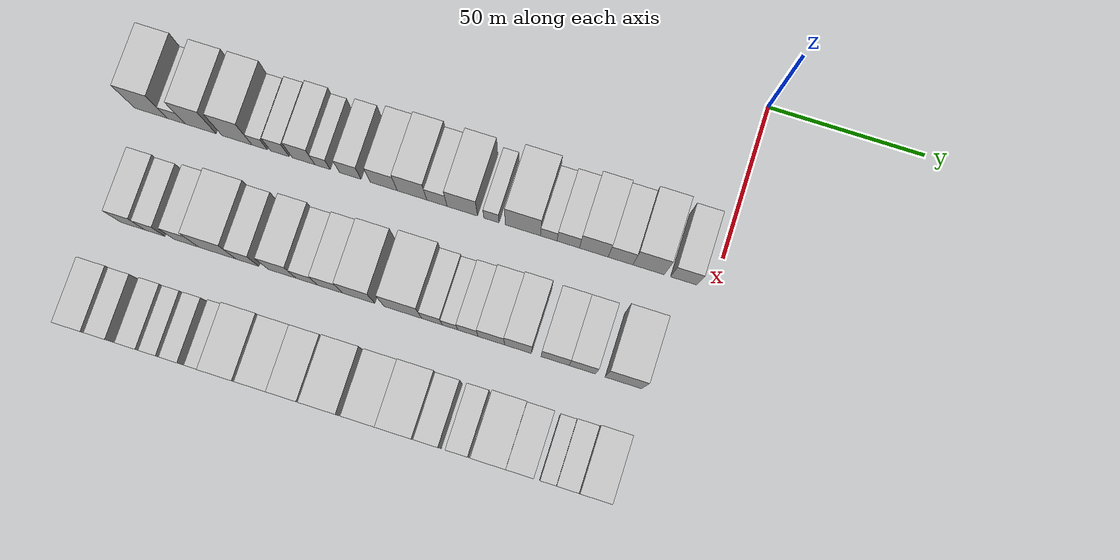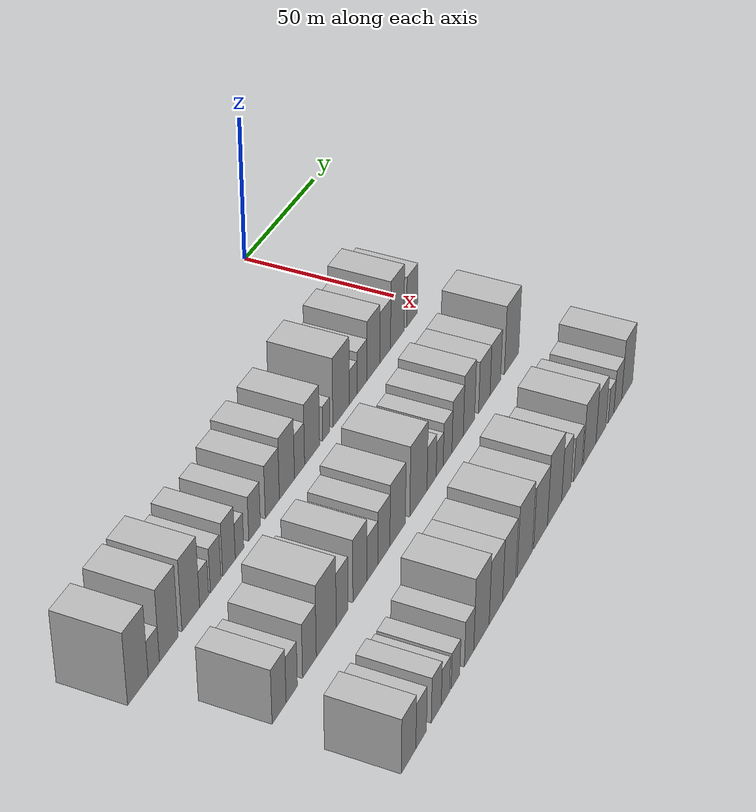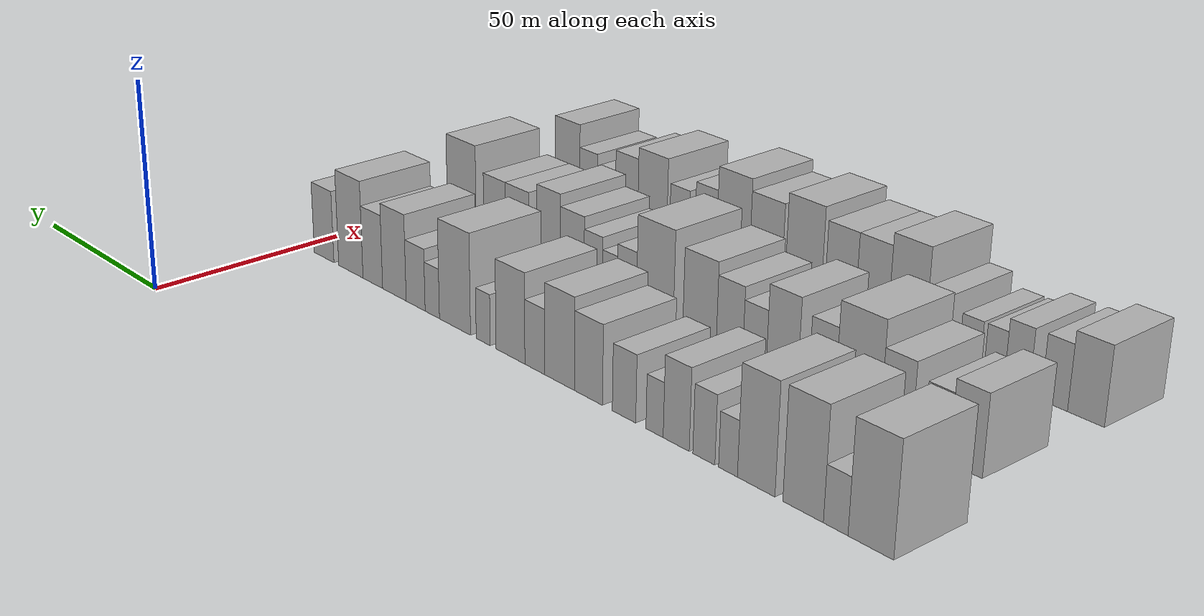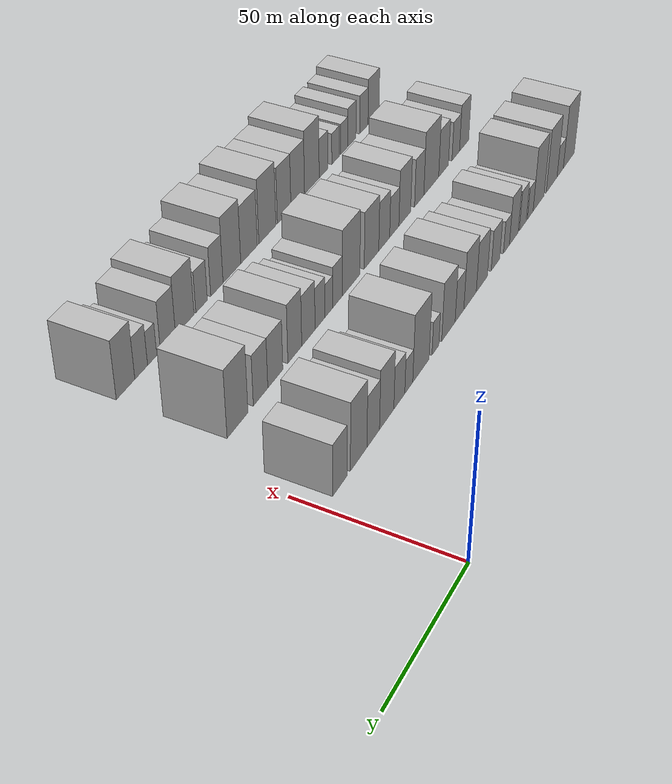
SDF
<sdf version="1.6">
 <world name="default">
  <model name="building_18">
   <static>1</static>
   <pose>50.0000 -181.0141 0 0.000000 0.000000 0.000000</pose>
   <link name="link">
    <pose>0 0 12.00 0 0 0</pose>
    <collision name="collision"><geometry><box><size>20.0000 10.6797 24.0000</size></box></geometry></collision>
    <visual name="visual">
     <cast_shadows>0</cast_shadows>
     <geometry><box><size>20.0000 10.6797 24.0000</size></box></geometry>
     <material>
      <script>
       <uri>model://HANNAS_wall/materials/scripts</uri>
       <uri>model://HANNAS_wall/materials/textures</uri>
       <name>vrc/HANNAS_wall</name>
      </script>
     </material>
    </visual>
   </link>
  </model>
  <model name="building_19">
   <static>1</static>
   <pose>50.0000 -172.7098 0 0.000000 0.000000 0.000000</pose>
   <link name="link">
    <pose>0 0 6.00 0 0 0</pose>
    <collision name="collision"><geometry><box><size>20.0000 5.9289 12.0000</size></box></geometry></collision>
    <visual name="visual">
     <cast_shadows>0</cast_shadows>
     <geometry><box><size>20.0000 5.9289 12.0000</size></box></geometry>
     <material>
      <script>
       <uri>model://HANNAS_wall/materials/scripts</uri>
       <uri>model://HANNAS_wall/materials/textures</uri>
       <name>vrc/HANNAS_wall</name>
      </script>
     </material>
    </visual>
   </link>
  </model>
  <model name="building_20">
   <static>1</static>
   <pose>50.0000 -164.6984 0 0.000000 0.000000 0.000000</pose>
   <link name="link">
    <pose>0 0 12.00 0 0 0</pose>
    <collision name="collision"><geometry><box><size>20.0000 10.0939 24.0000</size></box></geometry></collision>
    <visual name="visual">
     <cast_shadows>0</cast_shadows>
     <geometry><box><size>20.0000 10.0939 24.0000</size></box></geometry>
     <material>
      <script>
       <uri>model://HANNAS_wall/materials/scripts</uri>
       <uri>model://HANNAS_wall/materials/textures</uri>
       <name>vrc/HANNAS_wall</name>
      </script>
     </material>
    </visual>
   </link>
  </model>
  <model name="building_21">
   <static>1</static>
   <pose>50.0000 -152.7551 0 0.000000 0.000000 0.000000</pose>
   <link name="link">
    <pose>0 0 12.00 0 0 0</pose>
    <collision name="collision"><geometry><box><size>20.0000 9.7928 24.0000</size></box></geometry></collision>
    <visual name="visual">
     <cast_shadows>0</cast_shadows>
     <geometry><box><size>20.0000 9.7928 24.0000</size></box></geometry>
     <material>
      <script>
       <uri>model://HANNAS_wall/materials/scripts</uri>
       <uri>model://HANNAS_wall/materials/textures</uri>
       <name>vrc/HANNAS_wall</name>
      </script>
     </material>
    </visual>
   </link>
  </model>
  <model name="building_22">
   <static>1</static>
   <pose>50.0000 -145.3392 0 0.000000 0.000000 0.000000</pose>
   <link name="link">
    <pose>0 0 6.00 0 0 0</pose>
    <collision name="collision"><geometry><box><size>20.0000 5.0390 12.0000</size></box></geometry></collision>
    <visual name="visual">
     <cast_shadows>0</cast_shadows>
     <geometry><box><size>20.0000 5.0390 12.0000</size></box></geometry>
     <material>
      <script>
       <uri>model://HANNAS_wall/materials/scripts</uri>
       <uri>model://HANNAS_wall/materials/textures</uri>
       <name>vrc/HANNAS_wall</name>
      </script>
     </material>
    </visual>
   </link>
  </model>
  <model name="building_23">
   <static>1</static>
   <pose>50.0000 -138.7848 0 0.000000 0.000000 0.000000</pose>
   <link name="link">
    <pose>0 0 7.50 0 0 0</pose>
    <collision name="collision"><geometry><box><size>20.0000 6.0698 15.0000</size></box></geometry></collision>
    <visual name="visual">
     <cast_shadows>0</cast_shadows>
     <geometry><box><size>20.0000 6.0698 15.0000</size></box></geometry>
     <material>
      <script>
       <uri>model://HANNAS_wall/materials/scripts</uri>
       <uri>model://HANNAS_wall/materials/textures</uri>
       <name>vrc/HANNAS_wall</name>
      </script>
     </material>
    </visual>
   </link>
  </model>
  <model name="building_24">
   <static>1</static>
   <pose>50.0000 -131.0683 0 0.000000 0.000000 0.000000</pose>
   <link name="link">
    <pose>0 0 9.00 0 0 0</pose>
    <collision name="collision"><geometry><box><size>20.0000 7.3630 18.0000</size></box></geometry></collision>
    <visual name="visual">
     <cast_shadows>0</cast_shadows>
     <geometry><box><size>20.0000 7.3630 18.0000</size></box></geometry>
     <material>
      <script>
       <uri>model://HANNAS_wall/materials/scripts</uri>
       <uri>model://HANNAS_wall/materials/textures</uri>
       <name>vrc/HANNAS_wall</name>
      </script>
     </material>
    </visual>
   </link>
  </model>
  <model name="building_25">
   <static>1</static>
   <pose>50.0000 -124.8962 0 0.000000 0.000000 0.000000</pose>
   <link name="link">
    <pose>0 0 6.00 0 0 0</pose>
    <collision name="collision"><geometry><box><size>20.0000 4.9811 12.0000</size></box></geometry></collision>
    <visual name="visual">
     <cast_shadows>0</cast_shadows>
     <geometry><box><size>20.0000 4.9811 12.0000</size></box></geometry>
     <material>
      <script>
       <uri>model://HANNAS_wall/materials/scripts</uri>
       <uri>model://HANNAS_wall/materials/textures</uri>
       <name>vrc/HANNAS_wall</name>
      </script>
     </material>
    </visual>
   </link>
  </model>
  <model name="building_26">
   <static>1</static>
   <pose>50.0000 -115.9093 0 0.000000 0.000000 0.000000</pose>
   <link name="link">
    <pose>0 0 7.50 0 0 0</pose>
    <collision name="collision"><geometry><box><size>20.0000 6.9926 15.0000</size></box></geometry></collision>
    <visual name="visual">
     <cast_shadows>0</cast_shadows>
     <geometry><box><size>20.0000 6.9926 15.0000</size></box></geometry>
     <material>
      <script>
       <uri>model://HANNAS_wall/materials/scripts</uri>
       <uri>model://HANNAS_wall/materials/textures</uri>
       <name>vrc/HANNAS_wall</name>
      </script>
     </material>
    </visual>
   </link>
  </model>
  <model name="building_27">
   <static>1</static>
   <pose>50.0000 -105.0629 0 0.000000 0.000000 0.000000</pose>
   <link name="link">
    <pose>0 0 9.00 0 0 0</pose>
    <collision name="collision"><geometry><box><size>20.0000 8.7003 18.0000</size></box></geometry></collision>
    <visual name="visual">
     <cast_shadows>0</cast_shadows>
     <geometry><box><size>20.0000 8.7003 18.0000</size></box></geometry>
     <material>
      <script>
       <uri>model://HANNAS_wall/materials/scripts</uri>
       <uri>model://HANNAS_wall/materials/textures</uri>
       <name>vrc/HANNAS_wall</name>
      </script>
     </material>
    </visual>
   </link>
  </model>
  <model name="building_28">
   <static>1</static>
   <pose>50.0000 -95.9470 0 0.000000 0.000000 0.000000</pose>
   <link name="link">
    <pose>0 0 10.50 0 0 0</pose>
    <collision name="collision"><geometry><box><size>20.0000 9.5315 21.0000</size></box></geometry></collision>
    <visual name="visual">
     <cast_shadows>0</cast_shadows>
     <geometry><box><size>20.0000 9.5315 21.0000</size></box></geometry>
     <material>
      <script>
       <uri>model://HANNAS_wall/materials/scripts</uri>
       <uri>model://HANNAS_wall/materials/textures</uri>
       <name>vrc/HANNAS_wall</name>
      </script>
     </material>
    </visual>
   </link>
  </model>
  <model name="building_29">
   <static>1</static>
   <pose>50.0000 -87.9346 0 0.000000 0.000000 0.000000</pose>
   <link name="link">
    <pose>0 0 7.50 0 0 0</pose>
    <collision name="collision"><geometry><box><size>20.0000 6.4934 15.0000</size></box></geometry></collision>
    <visual name="visual">
     <cast_shadows>0</cast_shadows>
     <geometry><box><size>20.0000 6.4934 15.0000</size></box></geometry>
     <material>
      <script>
       <uri>model://HANNAS_wall/materials/scripts</uri>
       <uri>model://HANNAS_wall/materials/textures</uri>
       <name>vrc/HANNAS_wall</name>
      </script>
     </material>
    </visual>
   </link>
  </model>
  <model name="building_30">
   <static>1</static>
   <pose>50.0000 -79.7964 0 0.000000 0.000000 0.000000</pose>
   <link name="link">
    <pose>0 0 10.50 0 0 0</pose>
    <collision name="collision"><geometry><box><size>20.0000 9.7829 21.0000</size></box></geometry></collision>
    <visual name="visual">
     <cast_shadows>0</cast_shadows>
     <geometry><box><size>20.0000 9.7829 21.0000</size></box></geometry>
     <material>
      <script>
       <uri>model://HANNAS_wall/materials/scripts</uri>
       <uri>model://HANNAS_wall/materials/textures</uri>
       <name>vrc/HANNAS_wall</name>
      </script>
     </material>
    </visual>
   </link>
  </model>
  <model name="building_31">
   <static>1</static>
   <pose>50.0000 -70.4690 0 0.000000 0.000000 0.000000</pose>
   <link name="link">
    <pose>0 0 6.00 0 0 0</pose>
    <collision name="collision"><geometry><box><size>20.0000 4.8719 12.0000</size></box></geometry></collision>
    <visual name="visual">
     <cast_shadows>0</cast_shadows>
     <geometry><box><size>20.0000 4.8719 12.0000</size></box></geometry>
     <material>
      <script>
       <uri>model://HANNAS_wall/materials/scripts</uri>
       <uri>model://HANNAS_wall/materials/textures</uri>
       <name>vrc/HANNAS_wall</name>
      </script>
     </material>
    </visual>
   </link>
  </model>
  <model name="building_32">
   <static>1</static>
   <pose>50.0000 -60.4314 0 0.000000 0.000000 0.000000</pose>
   <link name="link">
    <pose>0 0 12.00 0 0 0</pose>
    <collision name="collision"><geometry><box><size>20.0000 11.2034 24.0000</size></box></geometry></collision>
    <visual name="visual">
     <cast_shadows>0</cast_shadows>
     <geometry><box><size>20.0000 11.2034 24.0000</size></box></geometry>
     <material>
      <script>
       <uri>model://HANNAS_wall/materials/scripts</uri>
       <uri>model://HANNAS_wall/materials/textures</uri>
       <name>vrc/HANNAS_wall</name>
      </script>
     </material>
    </visual>
   </link>
  </model>
  <model name="building_33">
   <static>1</static>
   <pose>50.0000 -52.1777 0 0.000000 0.000000 0.000000</pose>
   <link name="link">
    <pose>0 0 6.00 0 0 0</pose>
    <collision name="collision"><geometry><box><size>20.0000 5.3040 12.0000</size></box></geometry></collision>
    <visual name="visual">
     <cast_shadows>0</cast_shadows>
     <geometry><box><size>20.0000 5.3040 12.0000</size></box></geometry>
     <material>
      <script>
       <uri>model://HANNAS_wall/materials/scripts</uri>
       <uri>model://HANNAS_wall/materials/textures</uri>
       <name>vrc/HANNAS_wall</name>
      </script>
     </material>
    </visual>
   </link>
  </model>
  <model name="building_34">
   <static>1</static>
   <pose>50.0000 -45.9493 0 0.000000 0.000000 0.000000</pose>
   <link name="link">
    <pose>0 0 7.50 0 0 0</pose>
    <collision name="collision"><geometry><box><size>20.0000 7.1527 15.0000</size></box></geometry></collision>
    <visual name="visual">
     <cast_shadows>0</cast_shadows>
     <geometry><box><size>20.0000 7.1527 15.0000</size></box></geometry>
     <material>
      <script>
       <uri>model://HANNAS_wall/materials/scripts</uri>
       <uri>model://HANNAS_wall/materials/textures</uri>
       <name>vrc/HANNAS_wall</name>
      </script>
     </material>
    </visual>
   </link>
  </model>
  <model name="building_35">
   <static>1</static>
   <pose>50.0000 -37.8079 0 0.000000 0.000000 0.000000</pose>
   <link name="link">
    <pose>0 0 10.50 0 0 0</pose>
    <collision name="collision"><geometry><box><size>20.0000 9.1302 21.0000</size></box></geometry></collision>
    <visual name="visual">
     <cast_shadows>0</cast_shadows>
     <geometry><box><size>20.0000 9.1302 21.0000</size></box></geometry>
     <material>
      <script>
       <uri>model://HANNAS_wall/materials/scripts</uri>
       <uri>model://HANNAS_wall/materials/textures</uri>
       <name>vrc/HANNAS_wall</name>
      </script>
     </material>
    </visual>
   </link>
  </model>
  <model name="building_36">
   <static>1</static>
   <pose>50.0000 -29.3326 0 0.000000 0.000000 0.000000</pose>
   <link name="link">
    <pose>0 0 9.00 0 0 0</pose>
    <collision name="collision"><geometry><box><size>20.0000 7.8204 18.0000</size></box></geometry></collision>
    <visual name="visual">
     <cast_shadows>0</cast_shadows>
     <geometry><box><size>20.0000 7.8204 18.0000</size></box></geometry>
     <material>
      <script>
       <uri>model://HANNAS_wall/materials/scripts</uri>
       <uri>model://HANNAS_wall/materials/textures</uri>
       <name>vrc/HANNAS_wall</name>
      </script>
     </material>
    </visual>
   </link>
  </model>
  <model name="building_37">
   <static>1</static>
   <pose>50.0000 -20.4561 0 0.000000 0.000000 0.000000</pose>
   <link name="link">
    <pose>0 0 12.00 0 0 0</pose>
    <collision name="collision"><geometry><box><size>20.0000 9.9324 24.0000</size></box></geometry></collision>
    <visual name="visual">
     <cast_shadows>0</cast_shadows>
     <geometry><box><size>20.0000 9.9324 24.0000</size></box></geometry>
     <material>
      <script>
       <uri>model://HANNAS_wall/materials/scripts</uri>
       <uri>model://HANNAS_wall/materials/textures</uri>
       <name>vrc/HANNAS_wall</name>
      </script>
     </material>
    </visual>
   </link>
  </model>
  <model name="building_38">
   <static>1</static>
   <pose>50.0000 -9.3580 0 0.000000 0.000000 0.000000</pose>
   <link name="link">
    <pose>0 0 9.00 0 0 0</pose>
    <collision name="collision"><geometry><box><size>20.0000 8.2639 18.0000</size></box></geometry></collision>
    <visual name="visual">
     <cast_shadows>0</cast_shadows>
     <geometry><box><size>20.0000 8.2639 18.0000</size></box></geometry>
     <material>
      <script>
       <uri>model://HANNAS_wall/materials/scripts</uri>
       <uri>model://HANNAS_wall/materials/textures</uri>
       <name>vrc/HANNAS_wall</name>
      </script>
     </material>
    </visual>
   </link>
  </model>
  <model name="building_101">
   <static>1</static>
   <pose>85.0000 -173.8654 0 0.000000 0.000000 0.000000</pose>
   <link name="link">
    <pose>0 0 9.00 0 0 0</pose>
    <collision name="collision"><geometry><box><size>20.0000 7.9223 18.0000</size></box></geometry></collision>
    <visual name="visual">
     <cast_shadows>0</cast_shadows>
     <geometry><box><size>20.0000 7.9223 18.0000</size></box></geometry>
     <material>
      <script>
       <uri>model://HANNAS_wall/materials/scripts</uri>
       <uri>model://HANNAS_wall/materials/textures</uri>
       <name>vrc/HANNAS_wall</name>
      </script>
     </material>
    </visual>
   </link>
  </model>
  <model name="building_102">
   <static>1</static>
   <pose>85.0000 -166.7015 0 0.000000 0.000000 0.000000</pose>
   <link name="link">
    <pose>0 0 7.50 0 0 0</pose>
    <collision name="collision"><geometry><box><size>20.0000 6.4054 15.0000</size></box></geometry></collision>
    <visual name="visual">
     <cast_shadows>0</cast_shadows>
     <geometry><box><size>20.0000 6.4054 15.0000</size></box></geometry>
     <material>
      <script>
       <uri>model://HANNAS_wall/materials/scripts</uri>
       <uri>model://HANNAS_wall/materials/textures</uri>
       <name>vrc/HANNAS_wall</name>
      </script>
     </material>
    </visual>
   </link>
  </model>
  <model name="building_103">
   <static>1</static>
   <pose>85.0000 -156.4693 0 0.000000 0.000000 0.000000</pose>
   <link name="link">
    <pose>0 0 9.00 0 0 0</pose>
    <collision name="collision"><geometry><box><size>20.0000 8.0591 18.0000</size></box></geometry></collision>
    <visual name="visual">
     <cast_shadows>0</cast_shadows>
     <geometry><box><size>20.0000 8.0591 18.0000</size></box></geometry>
     <material>
      <script>
       <uri>model://HANNAS_wall/materials/scripts</uri>
       <uri>model://HANNAS_wall/materials/textures</uri>
       <name>vrc/HANNAS_wall</name>
      </script>
     </material>
    </visual>
   </link>
  </model>
  <model name="building_104">
   <static>1</static>
   <pose>85.0000 -146.4472 0 0.000000 0.000000 0.000000</pose>
   <link name="link">
    <pose>0 0 12.00 0 0 0</pose>
    <collision name="collision"><geometry><box><size>20.0000 11.9851 24.0000</size></box></geometry></collision>
    <visual name="visual">
     <cast_shadows>0</cast_shadows>
     <geometry><box><size>20.0000 11.9851 24.0000</size></box></geometry>
     <material>
      <script>
       <uri>model://HANNAS_wall/materials/scripts</uri>
       <uri>model://HANNAS_wall/materials/textures</uri>
       <name>vrc/HANNAS_wall</name>
      </script>
     </material>
    </visual>
   </link>
  </model>
  <model name="building_105">
   <static>1</static>
   <pose>85.0000 -136.8165 0 0.000000 0.000000 0.000000</pose>
   <link name="link">
    <pose>0 0 9.00 0 0 0</pose>
    <collision name="collision"><geometry><box><size>20.0000 7.2762 18.0000</size></box></geometry></collision>
    <visual name="visual">
     <cast_shadows>0</cast_shadows>
     <geometry><box><size>20.0000 7.2762 18.0000</size></box></geometry>
     <material>
      <script>
       <uri>model://HANNAS_wall/materials/scripts</uri>
       <uri>model://HANNAS_wall/materials/textures</uri>
       <name>vrc/HANNAS_wall</name>
      </script>
     </material>
    </visual>
   </link>
  </model>
  <model name="building_106">
   <static>1</static>
   <pose>85.0000 -125.6954 0 0.000000 0.000000 0.000000</pose>
   <link name="link">
    <pose>0 0 10.50 0 0 0</pose>
    <collision name="collision"><geometry><box><size>20.0000 8.9661 21.0000</size></box></geometry></collision>
    <visual name="visual">
     <cast_shadows>0</cast_shadows>
     <geometry><box><size>20.0000 8.9661 21.0000</size></box></geometry>
     <material>
      <script>
       <uri>model://HANNAS_wall/materials/scripts</uri>
       <uri>model://HANNAS_wall/materials/textures</uri>
       <name>vrc/HANNAS_wall</name>
      </script>
     </material>
    </visual>
   </link>
  </model>
  <model name="building_107">
   <static>1</static>
   <pose>85.0000 -117.7776 0 0.000000 0.000000 0.000000</pose>
   <link name="link">
    <pose>0 0 7.50 0 0 0</pose>
    <collision name="collision"><geometry><box><size>20.0000 6.8693 15.0000</size></box></geometry></collision>
    <visual name="visual">
     <cast_shadows>0</cast_shadows>
     <geometry><box><size>20.0000 6.8693 15.0000</size></box></geometry>
     <material>
      <script>
       <uri>model://HANNAS_wall/materials/scripts</uri>
       <uri>model://HANNAS_wall/materials/textures</uri>
       <name>vrc/HANNAS_wall</name>
      </script>
     </material>
    </visual>
   </link>
  </model>
  <model name="building_108">
   <static>1</static>
   <pose>85.0000 -110.3764 0 0.000000 0.000000 0.000000</pose>
   <link name="link">
    <pose>0 0 9.00 0 0 0</pose>
    <collision name="collision"><geometry><box><size>20.0000 7.9332 18.0000</size></box></geometry></collision>
    <visual name="visual">
     <cast_shadows>0</cast_shadows>
     <geometry><box><size>20.0000 7.9332 18.0000</size></box></geometry>
     <material>
      <script>
       <uri>model://HANNAS_wall/materials/scripts</uri>
       <uri>model://HANNAS_wall/materials/textures</uri>
       <name>vrc/HANNAS_wall</name>
      </script>
     </material>
    </visual>
   </link>
  </model>
  <model name="building_109">
   <static>1</static>
   <pose>85.0000 -101.2434 0 0.000000 0.000000 0.000000</pose>
   <link name="link">
    <pose>0 0 10.50 0 0 0</pose>
    <collision name="collision"><geometry><box><size>20.0000 10.3330 21.0000</size></box></geometry></collision>
    <visual name="visual">
     <cast_shadows>0</cast_shadows>
     <geometry><box><size>20.0000 10.3330 21.0000</size></box></geometry>
     <material>
      <script>
       <uri>model://HANNAS_wall/materials/scripts</uri>
       <uri>model://HANNAS_wall/materials/textures</uri>
       <name>vrc/HANNAS_wall</name>
      </script>
     </material>
    </visual>
   </link>
  </model>
  <model name="building_110">
   <static>1</static>
   <pose>85.0000 -87.1155 0 0.000000 0.000000 0.000000</pose>
   <link name="link">
    <pose>0 0 12.00 0 0 0</pose>
    <collision name="collision"><geometry><box><size>20.0000 11.9228 24.0000</size></box></geometry></collision>
    <visual name="visual">
     <cast_shadows>0</cast_shadows>
     <geometry><box><size>20.0000 11.9228 24.0000</size></box></geometry>
     <material>
      <script>
       <uri>model://HANNAS_wall/materials/scripts</uri>
       <uri>model://HANNAS_wall/materials/textures</uri>
       <name>vrc/HANNAS_wall</name>
      </script>
     </material>
    </visual>
   </link>
  </model>
  <model name="building_111">
   <static>1</static>
   <pose>85.0000 -77.9106 0 0.000000 0.000000 0.000000</pose>
   <link name="link">
    <pose>0 0 7.50 0 0 0</pose>
    <collision name="collision"><geometry><box><size>20.0000 6.4871 15.0000</size></box></geometry></collision>
    <visual name="visual">
     <cast_shadows>0</cast_shadows>
     <geometry><box><size>20.0000 6.4871 15.0000</size></box></geometry>
     <material>
      <script>
       <uri>model://HANNAS_wall/materials/scripts</uri>
       <uri>model://HANNAS_wall/materials/textures</uri>
       <name>vrc/HANNAS_wall</name>
      </script>
     </material>
    </visual>
   </link>
  </model>
  <model name="building_112">
   <static>1</static>
   <pose>85.0000 -72.1758 0 0.000000 0.000000 0.000000</pose>
   <link name="link">
    <pose>0 0 6.00 0 0 0</pose>
    <collision name="collision"><geometry><box><size>20.0000 4.9826 12.0000</size></box></geometry></collision>
    <visual name="visual">
     <cast_shadows>0</cast_shadows>
     <geometry><box><size>20.0000 4.9826 12.0000</size></box></geometry>
     <material>
      <script>
       <uri>model://HANNAS_wall/materials/scripts</uri>
       <uri>model://HANNAS_wall/materials/textures</uri>
       <name>vrc/HANNAS_wall</name>
      </script>
     </material>
    </visual>
   </link>
  </model>
  <model name="building_113">
   <static>1</static>
   <pose>85.0000 -66.5207 0 0.000000 0.000000 0.000000</pose>
   <link name="link">
    <pose>0 0 7.50 0 0 0</pose>
    <collision name="collision"><geometry><box><size>20.0000 6.3275 15.0000</size></box></geometry></collision>
    <visual name="visual">
     <cast_shadows>0</cast_shadows>
     <geometry><box><size>20.0000 6.3275 15.0000</size></box></geometry>
     <material>
      <script>
       <uri>model://HANNAS_wall/materials/scripts</uri>
       <uri>model://HANNAS_wall/materials/textures</uri>
       <name>vrc/HANNAS_wall</name>
      </script>
     </material>
    </visual>
   </link>
  </model>
  <model name="building_114">
   <static>1</static>
   <pose>85.0000 -59.1796 0 0.000000 0.000000 0.000000</pose>
   <link name="link">
    <pose>0 0 9.00 0 0 0</pose>
    <collision name="collision"><geometry><box><size>20.0000 8.3548 18.0000</size></box></geometry></collision>
    <visual name="visual">
     <cast_shadows>0</cast_shadows>
     <geometry><box><size>20.0000 8.3548 18.0000</size></box></geometry>
     <material>
      <script>
       <uri>model://HANNAS_wall/materials/scripts</uri>
       <uri>model://HANNAS_wall/materials/textures</uri>
       <name>vrc/HANNAS_wall</name>
      </script>
     </material>
    </visual>
   </link>
  </model>
  <model name="building_115">
   <static>1</static>
   <pose>85.0000 -50.7616 0 0.000000 0.000000 0.000000</pose>
   <link name="link">
    <pose>0 0 10.50 0 0 0</pose>
    <collision name="collision"><geometry><box><size>20.0000 8.4812 21.0000</size></box></geometry></collision>
    <visual name="visual">
     <cast_shadows>0</cast_shadows>
     <geometry><box><size>20.0000 8.4812 21.0000</size></box></geometry>
     <material>
      <script>
       <uri>model://HANNAS_wall/materials/scripts</uri>
       <uri>model://HANNAS_wall/materials/textures</uri>
       <name>vrc/HANNAS_wall</name>
      </script>
     </material>
    </visual>
   </link>
  </model>
  <model name="building_116">
   <static>1</static>
   <pose>85.0000 -39.1136 0 0.000000 0.000000 0.000000</pose>
   <link name="link">
    <pose>0 0 9.00 0 0 0</pose>
    <collision name="collision"><geometry><box><size>20.0000 8.8148 18.0000</size></box></geometry></collision>
    <visual name="visual">
     <cast_shadows>0</cast_shadows>
     <geometry><box><size>20.0000 8.8148 18.0000</size></box></geometry>
     <material>
      <script>
       <uri>model://HANNAS_wall/materials/scripts</uri>
       <uri>model://HANNAS_wall/materials/textures</uri>
       <name>vrc/HANNAS_wall</name>
      </script>
     </material>
    </visual>
   </link>
  </model>
  <model name="building_117">
   <static>1</static>
   <pose>85.0000 -30.5663 0 0.000000 0.000000 0.000000</pose>
   <link name="link">
    <pose>0 0 9.00 0 0 0</pose>
    <collision name="collision"><geometry><box><size>20.0000 8.2798 18.0000</size></box></geometry></collision>
    <visual name="visual">
     <cast_shadows>0</cast_shadows>
     <geometry><box><size>20.0000 8.2798 18.0000</size></box></geometry>
     <material>
      <script>
       <uri>model://HANNAS_wall/materials/scripts</uri>
       <uri>model://HANNAS_wall/materials/textures</uri>
       <name>vrc/HANNAS_wall</name>
      </script>
     </material>
    </visual>
   </link>
  </model>
  <model name="building_118">
   <static>1</static>
   <pose>85.0000 -17.6910 0 0.000000 0.000000 0.000000</pose>
   <link name="link">
    <pose>0 0 12.00 0 0 0</pose>
    <collision name="collision"><geometry><box><size>20.0000 11.4709 24.0000</size></box></geometry></collision>
    <visual name="visual">
     <cast_shadows>0</cast_shadows>
     <geometry><box><size>20.0000 11.4709 24.0000</size></box></geometry>
     <material>
      <script>
       <uri>model://HANNAS_wall/materials/scripts</uri>
       <uri>model://HANNAS_wall/materials/textures</uri>
       <name>vrc/HANNAS_wall</name>
      </script>
     </material>
    </visual>
   </link>
  </model>
  <model name="building_173">
   <static>1</static>
   <pose>120.0000 -175.7726 0 0.000000 0.000000 0.000000</pose>
   <link name="link">
    <pose>0 0 9.00 0 0 0</pose>
    <collision name="collision"><geometry><box><size>20.0000 8.8434 18.0000</size></box></geometry></collision>
    <visual name="visual">
     <cast_shadows>0</cast_shadows>
     <geometry><box><size>20.0000 8.8434 18.0000</size></box></geometry>
     <material>
      <script>
       <uri>model://HANNAS_wall/materials/scripts</uri>
       <uri>model://HANNAS_wall/materials/textures</uri>
       <name>vrc/HANNAS_wall</name>
      </script>
     </material>
    </visual>
   </link>
  </model>
  <model name="building_174">
   <static>1</static>
   <pose>120.0000 -168.1011 0 0.000000 0.000000 0.000000</pose>
   <link name="link">
    <pose>0 0 7.50 0 0 0</pose>
    <collision name="collision"><geometry><box><size>20.0000 6.4994 15.0000</size></box></geometry></collision>
    <visual name="visual">
     <cast_shadows>0</cast_shadows>
     <geometry><box><size>20.0000 6.4994 15.0000</size></box></geometry>
     <material>
      <script>
       <uri>model://HANNAS_wall/materials/scripts</uri>
       <uri>model://HANNAS_wall/materials/textures</uri>
       <name>vrc/HANNAS_wall</name>
      </script>
     </material>
    </visual>
   </link>
  </model>
  <model name="building_175">
   <static>1</static>
   <pose>120.0000 -158.6725 0 0.000000 0.000000 0.000000</pose>
   <link name="link">
    <pose>0 0 7.50 0 0 0</pose>
    <collision name="collision"><geometry><box><size>20.0000 6.3578 15.0000</size></box></geometry></collision>
    <visual name="visual">
     <cast_shadows>0</cast_shadows>
     <geometry><box><size>20.0000 6.3578 15.0000</size></box></geometry>
     <material>
      <script>
       <uri>model://HANNAS_wall/materials/scripts</uri>
       <uri>model://HANNAS_wall/materials/textures</uri>
       <name>vrc/HANNAS_wall</name>
      </script>
     </material>
    </visual>
   </link>
  </model>
  <model name="building_176">
   <static>1</static>
   <pose>120.0000 -152.8319 0 0.000000 0.000000 0.000000</pose>
   <link name="link">
    <pose>0 0 6.00 0 0 0</pose>
    <collision name="collision"><geometry><box><size>20.0000 5.3234 12.0000</size></box></geometry></collision>
    <visual name="visual">
     <cast_shadows>0</cast_shadows>
     <geometry><box><size>20.0000 5.3234 12.0000</size></box></geometry>
     <material>
      <script>
       <uri>model://HANNAS_wall/materials/scripts</uri>
       <uri>model://HANNAS_wall/materials/textures</uri>
       <name>vrc/HANNAS_wall</name>
      </script>
     </material>
    </visual>
   </link>
  </model>
  <model name="building_177">
   <static>1</static>
   <pose>120.0000 -146.3475 0 0.000000 0.000000 0.000000</pose>
   <link name="link">
    <pose>0 0 6.00 0 0 0</pose>
    <collision name="collision"><geometry><box><size>20.0000 5.6453 12.0000</size></box></geometry></collision>
    <visual name="visual">
     <cast_shadows>0</cast_shadows>
     <geometry><box><size>20.0000 5.6453 12.0000</size></box></geometry>
     <material>
      <script>
       <uri>model://HANNAS_wall/materials/scripts</uri>
       <uri>model://HANNAS_wall/materials/textures</uri>
       <name>vrc/HANNAS_wall</name>
      </script>
     </material>
    </visual>
   </link>
  </model>
  <model name="building_178">
   <static>1</static>
   <pose>120.0000 -137.4095 0 0.000000 0.000000 0.000000</pose>
   <link name="link">
    <pose>0 0 7.50 0 0 0</pose>
    <collision name="collision"><geometry><box><size>20.0000 6.2309 15.0000</size></box></geometry></collision>
    <visual name="visual">
     <cast_shadows>0</cast_shadows>
     <geometry><box><size>20.0000 6.2309 15.0000</size></box></geometry>
     <material>
      <script>
       <uri>model://HANNAS_wall/materials/scripts</uri>
       <uri>model://HANNAS_wall/materials/textures</uri>
       <name>vrc/HANNAS_wall</name>
      </script>
     </material>
    </visual>
   </link>
  </model>
  <model name="building_179">
   <static>1</static>
   <pose>120.0000 -129.0737 0 0.000000 0.000000 0.000000</pose>
   <link name="link">
    <pose>0 0 12.00 0 0 0</pose>
    <collision name="collision"><geometry><box><size>20.0000 10.4406 24.0000</size></box></geometry></collision>
    <visual name="visual">
     <cast_shadows>0</cast_shadows>
     <geometry><box><size>20.0000 10.4406 24.0000</size></box></geometry>
     <material>
      <script>
       <uri>model://HANNAS_wall/materials/scripts</uri>
       <uri>model://HANNAS_wall/materials/textures</uri>
       <name>vrc/HANNAS_wall</name>
      </script>
     </material>
    </visual>
   </link>
  </model>
  <model name="building_180">
   <static>1</static>
   <pose>120.0000 -119.1381 0 0.000000 0.000000 0.000000</pose>
   <link name="link">
    <pose>0 0 10.50 0 0 0</pose>
    <collision name="collision"><geometry><box><size>20.0000 9.4308 21.0000</size></box></geometry></collision>
    <visual name="visual">
     <cast_shadows>0</cast_shadows>
     <geometry><box><size>20.0000 9.4308 21.0000</size></box></geometry>
     <material>
      <script>
       <uri>model://HANNAS_wall/materials/scripts</uri>
       <uri>model://HANNAS_wall/materials/textures</uri>
       <name>vrc/HANNAS_wall</name>
      </script>
     </material>
    </visual>
   </link>
  </model>
  <model name="building_181">
   <static>1</static>
   <pose>120.0000 -109.8300 0 0.000000 0.000000 0.000000</pose>
   <link name="link">
    <pose>0 0 10.50 0 0 0</pose>
    <collision name="collision"><geometry><box><size>20.0000 9.1854 21.0000</size></box></geometry></collision>
    <visual name="visual">
     <cast_shadows>0</cast_shadows>
     <geometry><box><size>20.0000 9.1854 21.0000</size></box></geometry>
     <material>
      <script>
       <uri>model://HANNAS_wall/materials/scripts</uri>
       <uri>model://HANNAS_wall/materials/textures</uri>
       <name>vrc/HANNAS_wall</name>
      </script>
     </material>
    </visual>
   </link>
  </model>
  <model name="building_182">
   <static>1</static>
   <pose>120.0000 -98.6690 0 0.000000 0.000000 0.000000</pose>
   <link name="link">
    <pose>0 0 12.00 0 0 0</pose>
    <collision name="collision"><geometry><box><size>20.0000 11.1365 24.0000</size></box></geometry></collision>
    <visual name="visual">
     <cast_shadows>0</cast_shadows>
     <geometry><box><size>20.0000 11.1365 24.0000</size></box></geometry>
     <material>
      <script>
       <uri>model://HANNAS_wall/materials/scripts</uri>
       <uri>model://HANNAS_wall/materials/textures</uri>
       <name>vrc/HANNAS_wall</name>
      </script>
     </material>
    </visual>
   </link>
  </model>
  <model name="building_183">
   <static>1</static>
   <pose>120.0000 -86.8817 0 0.000000 0.000000 0.000000</pose>
   <link name="link">
    <pose>0 0 10.50 0 0 0</pose>
    <collision name="collision"><geometry><box><size>20.0000 10.4381 21.0000</size></box></geometry></collision>
    <visual name="visual">
     <cast_shadows>0</cast_shadows>
     <geometry><box><size>20.0000 10.4381 21.0000</size></box></geometry>
     <material>
      <script>
       <uri>model://HANNAS_wall/materials/scripts</uri>
       <uri>model://HANNAS_wall/materials/textures</uri>
       <name>vrc/HANNAS_wall</name>
      </script>
     </material>
    </visual>
   </link>
  </model>
  <model name="building_184">
   <static>1</static>
   <pose>120.0000 -76.2203 0 0.000000 0.000000 0.000000</pose>
   <link name="link">
    <pose>0 0 12.00 0 0 0</pose>
    <collision name="collision"><geometry><box><size>20.0000 10.8848 24.0000</size></box></geometry></collision>
    <visual name="visual">
     <cast_shadows>0</cast_shadows>
     <geometry><box><size>20.0000 10.8848 24.0000</size></box></geometry>
     <material>
      <script>
       <uri>model://HANNAS_wall/materials/scripts</uri>
       <uri>model://HANNAS_wall/materials/textures</uri>
       <name>vrc/HANNAS_wall</name>
      </script>
     </material>
    </visual>
   </link>
  </model>
  <model name="building_185">
   <static>1</static>
   <pose>120.0000 -67.0884 0 0.000000 0.000000 0.000000</pose>
   <link name="link">
    <pose>0 0 9.00 0 0 0</pose>
    <collision name="collision"><geometry><box><size>20.0000 7.3789 18.0000</size></box></geometry></collision>
    <visual name="visual">
     <cast_shadows>0</cast_shadows>
     <geometry><box><size>20.0000 7.3789 18.0000</size></box></geometry>
     <material>
      <script>
       <uri>model://HANNAS_wall/materials/scripts</uri>
       <uri>model://HANNAS_wall/materials/textures</uri>
       <name>vrc/HANNAS_wall</name>
      </script>
     </material>
    </visual>
   </link>
  </model>
  <model name="building_186">
   <static>1</static>
   <pose>120.0000 -58.0364 0 0.000000 0.000000 0.000000</pose>
   <link name="link">
    <pose>0 0 7.50 0 0 0</pose>
    <collision name="collision"><geometry><box><size>20.0000 6.7252 15.0000</size></box></geometry></collision>
    <visual name="visual">
     <cast_shadows>0</cast_shadows>
     <geometry><box><size>20.0000 6.7252 15.0000</size></box></geometry>
     <material>
      <script>
       <uri>model://HANNAS_wall/materials/scripts</uri>
       <uri>model://HANNAS_wall/materials/textures</uri>
       <name>vrc/HANNAS_wall</name>
      </script>
     </material>
    </visual>
   </link>
  </model>
  <model name="building_187">
   <static>1</static>
   <pose>120.0000 -48.4463 0 0.000000 0.000000 0.000000</pose>
   <link name="link">
    <pose>0 0 10.50 0 0 0</pose>
    <collision name="collision"><geometry><box><size>20.0000 10.4550 21.0000</size></box></geometry></collision>
    <visual name="visual">
     <cast_shadows>0</cast_shadows>
     <geometry><box><size>20.0000 10.4550 21.0000</size></box></geometry>
     <material>
      <script>
       <uri>model://HANNAS_wall/materials/scripts</uri>
       <uri>model://HANNAS_wall/materials/textures</uri>
       <name>vrc/HANNAS_wall</name>
      </script>
     </material>
    </visual>
   </link>
  </model>
  <model name="building_188">
   <static>1</static>
   <pose>120.0000 -39.0709 0 0.000000 0.000000 0.000000</pose>
   <link name="link">
    <pose>0 0 9.00 0 0 0</pose>
    <collision name="collision"><geometry><box><size>20.0000 8.2957 18.0000</size></box></geometry></collision>
    <visual name="visual">
     <cast_shadows>0</cast_shadows>
     <geometry><box><size>20.0000 8.2957 18.0000</size></box></geometry>
     <material>
      <script>
       <uri>model://HANNAS_wall/materials/scripts</uri>
       <uri>model://HANNAS_wall/materials/textures</uri>
       <name>vrc/HANNAS_wall</name>
      </script>
     </material>
    </visual>
   </link>
  </model>
  <model name="building_189">
   <static>1</static>
   <pose>120.0000 -30.4799 0 0.000000 0.000000 0.000000</pose>
   <link name="link">
    <pose>0 0 6.00 0 0 0</pose>
    <collision name="collision"><geometry><box><size>20.0000 4.8863 12.0000</size></box></geometry></collision>
    <visual name="visual">
     <cast_shadows>0</cast_shadows>
     <geometry><box><size>20.0000 4.8863 12.0000</size></box></geometry>
     <material>
      <script>
       <uri>model://HANNAS_wall/materials/scripts</uri>
       <uri>model://HANNAS_wall/materials/textures</uri>
       <name>vrc/HANNAS_wall</name>
      </script>
     </material>
    </visual>
   </link>
  </model>
  <model name="building_190">
   <static>1</static>
   <pose>120.0000 -24.6887 0 0.000000 0.000000 0.000000</pose>
   <link name="link">
    <pose>0 0 7.50 0 0 0</pose>
    <collision name="collision"><geometry><box><size>20.0000 6.6962 15.0000</size></box></geometry></collision>
    <visual name="visual">
     <cast_shadows>0</cast_shadows>
     <geometry><box><size>20.0000 6.6962 15.0000</size></box></geometry>
     <material>
      <script>
       <uri>model://HANNAS_wall/materials/scripts</uri>
       <uri>model://HANNAS_wall/materials/textures</uri>
       <name>vrc/HANNAS_wall</name>
      </script>
     </material>
    </visual>
   </link>
  </model>
  <model name="building_191">
   <static>1</static>
   <pose>120.0000 -16.5790 0 0.000000 0.000000 0.000000</pose>
   <link name="link">
    <pose>0 0 10.50 0 0 0</pose>
    <collision name="collision"><geometry><box><size>20.0000 9.5232 21.0000</size></box></geometry></collision>
    <visual name="visual">
     <cast_shadows>0</cast_shadows>
     <geometry><box><size>20.0000 9.5232 21.0000</size></box></geometry>
     <material>
      <script>
       <uri>model://HANNAS_wall/materials/scripts</uri>
       <uri>model://HANNAS_wall/materials/textures</uri>
       <name>vrc/HANNAS_wall</name>
      </script>
     </material>
    </visual>
   </link>
  </model>
 </world>
</sdf>
